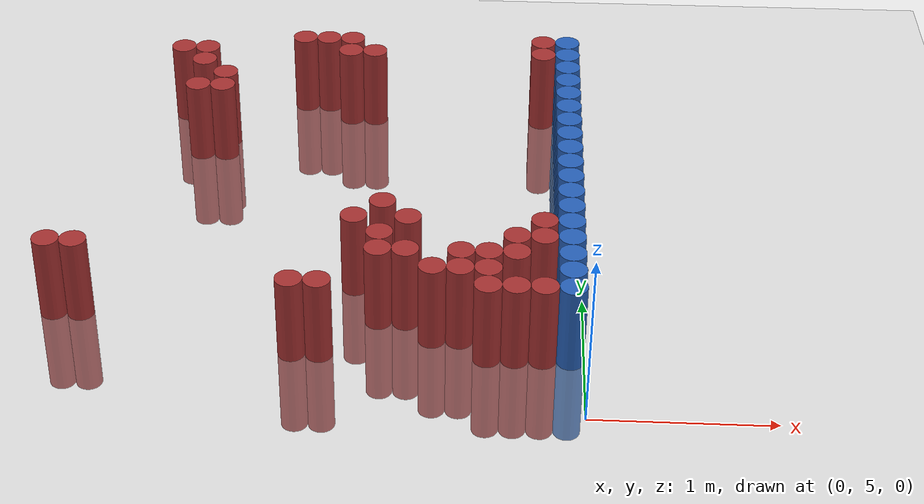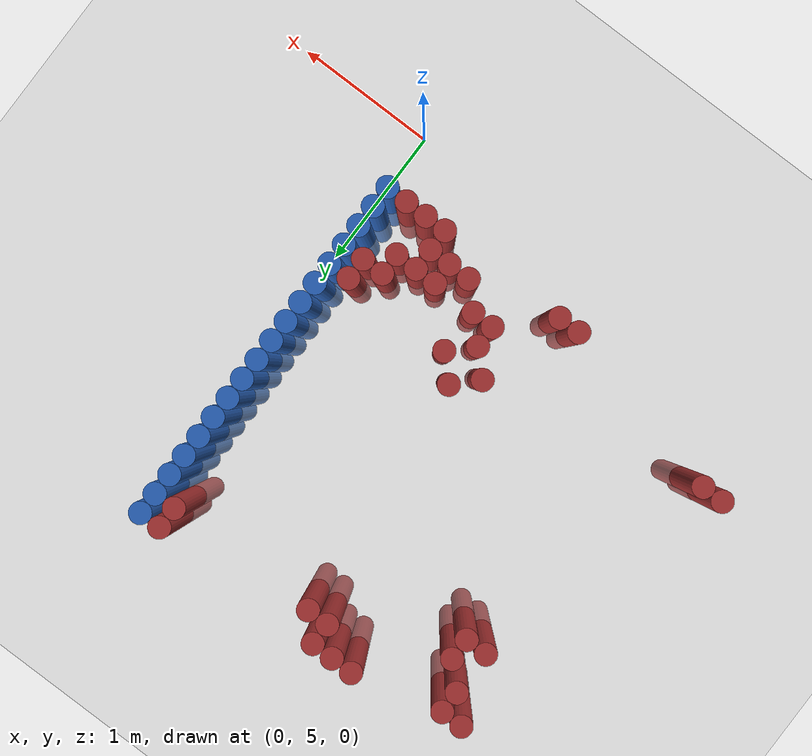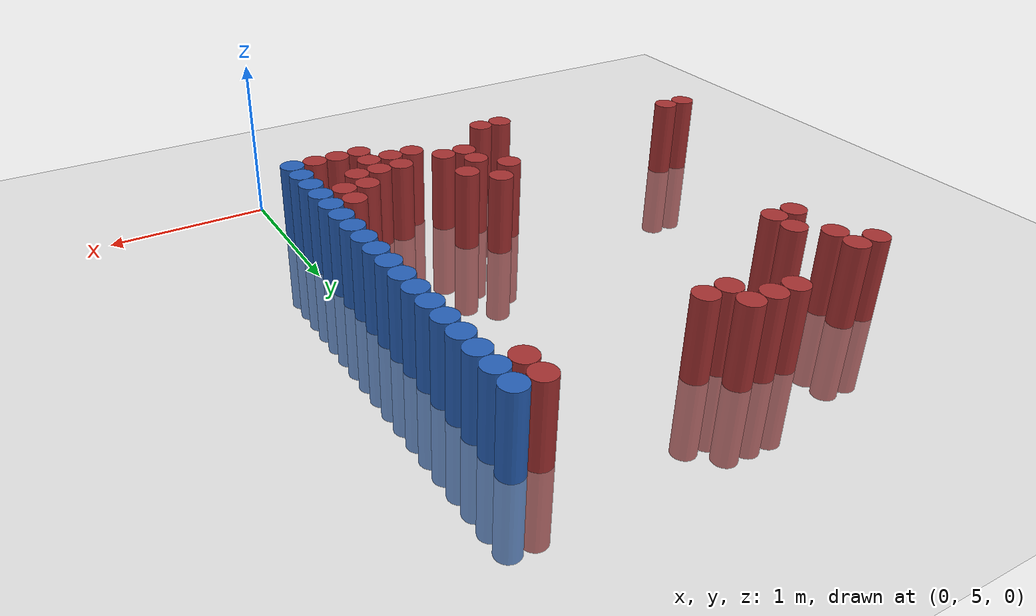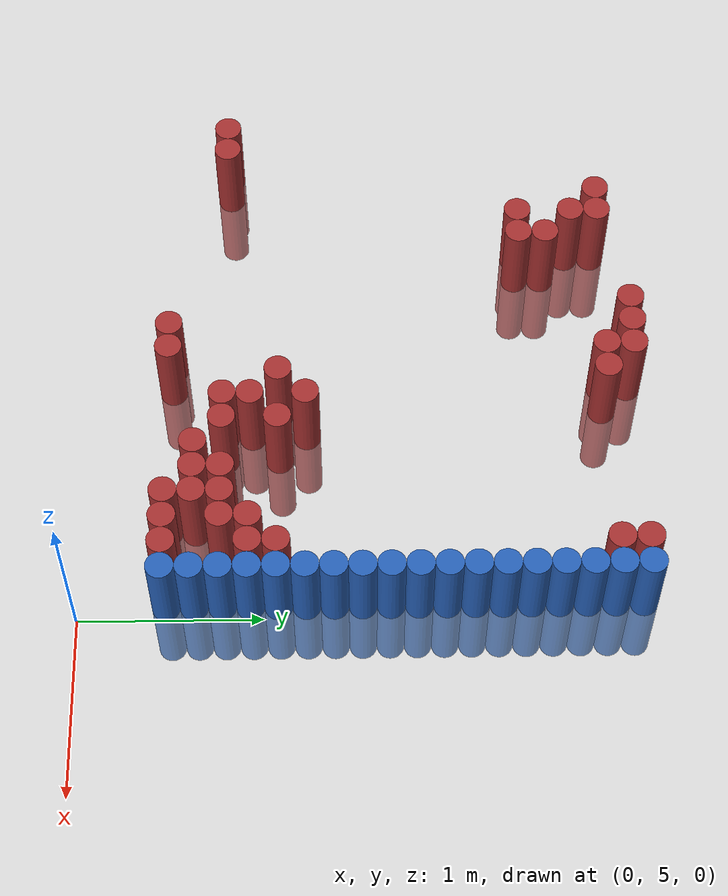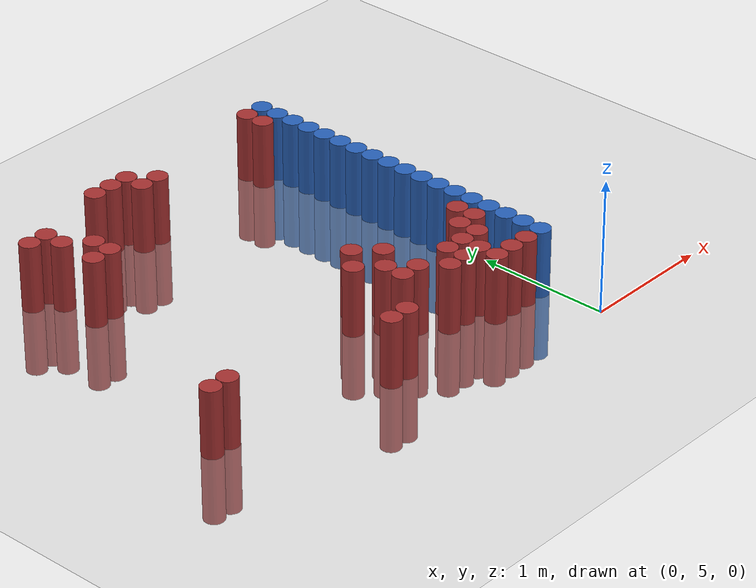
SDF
<sdf version="1.6">
 <world name="default">
  <model name="ground_plane">
   <static>1</static>
   <link name="link">
    <collision name="collision">
     <geometry><plane><normal>0 0 1</normal><size>100 100</size></plane></geometry>
     <surface><friction><ode><mu>100</mu><mu2>50</mu2></ode></friction></surface>
    </collision>
    <visual name="visual">
     <cast_shadows>0</cast_shadows>
     <geometry><plane><normal>0 0 1</normal><size>100 100</size></plane></geometry>
     <material>
      <script><uri>file://media/materials/scripts/gazebo.material</uri><name>Gazebo/Grey</name></script>
     </material>
    </visual>
   </link>
  </model>
  <model name="unit_cylinder_153">
   <static>1</static>
   <pose>-2.925000 5.775000 0.000000 0.000000 0.000000 0.000000</pose>
   <link name="link">
    <inertial>
     <mass>1</mass>
     <inertia><ixx>0.145833</ixx><ixy>0</ixy><ixz>0</ixz><iyy>0.145833</iyy><iyz>0</iyz><izz>0.125</izz></inertia>
    </inertial>
    <collision name="collision">
     <geometry><cylinder><radius>0.075000</radius><length>1</length></cylinder></geometry>
    </collision>
    <visual name="visual">
     <geometry><cylinder><radius>0.075000</radius><length>1</length></cylinder></geometry>
     <material>
      <ambient>0.648000 0.192000 0.192000 1</ambient>
      <diffuse>0.648000 0.192000 0.192000 1</diffuse>
     </material>
     <material>
      <script><name>Gazebo/Grey</name><uri>file://media/materials/scripts/gazebo.material</uri></script>
     </material>
    </visual>
   </link>
  </model>
  <model name="unit_cylinder_154">
   <static>1</static>
   <pose>-2.775000 5.775000 0.000000 0.000000 0.000000 0.000000</pose>
   <link name="link">
    <inertial>
     <mass>1</mass>
     <inertia><ixx>0.145833</ixx><ixy>0</ixy><ixz>0</ixz><iyy>0.145833</iyy><iyz>0</iyz><izz>0.125</izz></inertia>
    </inertial>
    <collision name="collision">
     <geometry><cylinder><radius>0.075000</radius><length>1</length></cylinder></geometry>
    </collision>
    <visual name="visual">
     <geometry><cylinder><radius>0.075000</radius><length>1</length></cylinder></geometry>
     <material>
      <ambient>0.648000 0.192000 0.192000 1</ambient>
      <diffuse>0.648000 0.192000 0.192000 1</diffuse>
     </material>
     <material>
      <script><name>Gazebo/Grey</name><uri>file://media/materials/scripts/gazebo.material</uri></script>
     </material>
    </visual>
   </link>
  </model>
  <model name="unit_cylinder_155">
   <static>1</static>
   <pose>-2.475000 7.875000 0.000000 0.000000 0.000000 0.000000</pose>
   <link name="link">
    <inertial>
     <mass>1</mass>
     <inertia><ixx>0.145833</ixx><ixy>0</ixy><ixz>0</ixz><iyy>0.145833</iyy><iyz>0</iyz><izz>0.125</izz></inertia>
    </inertial>
    <collision name="collision">
     <geometry><cylinder><radius>0.075000</radius><length>1</length></cylinder></geometry>
    </collision>
    <visual name="visual">
     <geometry><cylinder><radius>0.075000</radius><length>1</length></cylinder></geometry>
     <material>
      <ambient>0.648000 0.192000 0.192000 1</ambient>
      <diffuse>0.648000 0.192000 0.192000 1</diffuse>
     </material>
     <material>
      <script><name>Gazebo/Grey</name><uri>file://media/materials/scripts/gazebo.material</uri></script>
     </material>
    </visual>
   </link>
  </model>
  <model name="unit_cylinder_156">
   <static>1</static>
   <pose>-2.325000 7.425000 0.000000 0.000000 0.000000 0.000000</pose>
   <link name="link">
    <inertial>
     <mass>1</mass>
     <inertia><ixx>0.145833</ixx><ixy>0</ixy><ixz>0</ixz><iyy>0.145833</iyy><iyz>0</iyz><izz>0.125</izz></inertia>
    </inertial>
    <collision name="collision">
     <geometry><cylinder><radius>0.075000</radius><length>1</length></cylinder></geometry>
    </collision>
    <visual name="visual">
     <geometry><cylinder><radius>0.075000</radius><length>1</length></cylinder></geometry>
     <material>
      <ambient>0.648000 0.192000 0.192000 1</ambient>
      <diffuse>0.648000 0.192000 0.192000 1</diffuse>
     </material>
     <material>
      <script><name>Gazebo/Grey</name><uri>file://media/materials/scripts/gazebo.material</uri></script>
     </material>
    </visual>
   </link>
  </model>
  <model name="unit_cylinder_157">
   <static>1</static>
   <pose>-2.325000 7.725000 0.000000 0.000000 0.000000 0.000000</pose>
   <link name="link">
    <inertial>
     <mass>1</mass>
     <inertia><ixx>0.145833</ixx><ixy>0</ixy><ixz>0</ixz><iyy>0.145833</iyy><iyz>0</iyz><izz>0.125</izz></inertia>
    </inertial>
    <collision name="collision">
     <geometry><cylinder><radius>0.075000</radius><length>1</length></cylinder></geometry>
    </collision>
    <visual name="visual">
     <geometry><cylinder><radius>0.075000</radius><length>1</length></cylinder></geometry>
     <material>
      <ambient>0.648000 0.192000 0.192000 1</ambient>
      <diffuse>0.648000 0.192000 0.192000 1</diffuse>
     </material>
     <material>
      <script><name>Gazebo/Grey</name><uri>file://media/materials/scripts/gazebo.material</uri></script>
     </material>
    </visual>
   </link>
  </model>
  <model name="unit_cylinder_158">
   <static>1</static>
   <pose>-2.325000 7.875000 0.000000 0.000000 0.000000 0.000000</pose>
   <link name="link">
    <inertial>
     <mass>1</mass>
     <inertia><ixx>0.145833</ixx><ixy>0</ixy><ixz>0</ixz><iyy>0.145833</iyy><iyz>0</iyz><izz>0.125</izz></inertia>
    </inertial>
    <collision name="collision">
     <geometry><cylinder><radius>0.075000</radius><length>1</length></cylinder></geometry>
    </collision>
    <visual name="visual">
     <geometry><cylinder><radius>0.075000</radius><length>1</length></cylinder></geometry>
     <material>
      <ambient>0.648000 0.192000 0.192000 1</ambient>
      <diffuse>0.648000 0.192000 0.192000 1</diffuse>
     </material>
     <material>
      <script><name>Gazebo/Grey</name><uri>file://media/materials/scripts/gazebo.material</uri></script>
     </material>
    </visual>
   </link>
  </model>
  <model name="unit_cylinder_160">
   <static>1</static>
   <pose>-2.175000 7.425000 0.000000 0.000000 0.000000 0.000000</pose>
   <link name="link">
    <inertial>
     <mass>1</mass>
     <inertia><ixx>0.145833</ixx><ixy>0</ixy><ixz>0</ixz><iyy>0.145833</iyy><iyz>0</iyz><izz>0.125</izz></inertia>
    </inertial>
    <collision name="collision">
     <geometry><cylinder><radius>0.075000</radius><length>1</length></cylinder></geometry>
    </collision>
    <visual name="visual">
     <geometry><cylinder><radius>0.075000</radius><length>1</length></cylinder></geometry>
     <material>
      <ambient>0.648000 0.192000 0.192000 1</ambient>
      <diffuse>0.648000 0.192000 0.192000 1</diffuse>
     </material>
     <material>
      <script><name>Gazebo/Grey</name><uri>file://media/materials/scripts/gazebo.material</uri></script>
     </material>
    </visual>
   </link>
  </model>
  <model name="unit_cylinder_161">
   <static>1</static>
   <pose>-2.175000 7.575000 0.000000 0.000000 0.000000 0.000000</pose>
   <link name="link">
    <inertial>
     <mass>1</mass>
     <inertia><ixx>0.145833</ixx><ixy>0</ixy><ixz>0</ixz><iyy>0.145833</iyy><iyz>0</iyz><izz>0.125</izz></inertia>
    </inertial>
    <collision name="collision">
     <geometry><cylinder><radius>0.075000</radius><length>1</length></cylinder></geometry>
    </collision>
    <visual name="visual">
     <geometry><cylinder><radius>0.075000</radius><length>1</length></cylinder></geometry>
     <material>
      <ambient>0.648000 0.192000 0.192000 1</ambient>
      <diffuse>0.648000 0.192000 0.192000 1</diffuse>
     </material>
     <material>
      <script><name>Gazebo/Grey</name><uri>file://media/materials/scripts/gazebo.material</uri></script>
     </material>
    </visual>
   </link>
  </model>
  <model name="unit_cylinder_169">
   <static>1</static>
   <pose>-1.725000 8.025000 0.000000 0.000000 0.000000 0.000000</pose>
   <link name="link">
    <inertial>
     <mass>1</mass>
     <inertia><ixx>0.145833</ixx><ixy>0</ixy><ixz>0</ixz><iyy>0.145833</iyy><iyz>0</iyz><izz>0.125</izz></inertia>
    </inertial>
    <collision name="collision">
     <geometry><cylinder><radius>0.075000</radius><length>1</length></cylinder></geometry>
    </collision>
    <visual name="visual">
     <geometry><cylinder><radius>0.075000</radius><length>1</length></cylinder></geometry>
     <material>
      <ambient>0.648000 0.192000 0.192000 1</ambient>
      <diffuse>0.648000 0.192000 0.192000 1</diffuse>
     </material>
     <material>
      <script><name>Gazebo/Grey</name><uri>file://media/materials/scripts/gazebo.material</uri></script>
     </material>
    </visual>
   </link>
  </model>
  <model name="unit_cylinder_173">
   <static>1</static>
   <pose>-1.575000 5.475000 0.000000 0.000000 0.000000 0.000000</pose>
   <link name="link">
    <inertial>
     <mass>1</mass>
     <inertia><ixx>0.145833</ixx><ixy>0</ixy><ixz>0</ixz><iyy>0.145833</iyy><iyz>0</iyz><izz>0.125</izz></inertia>
    </inertial>
    <collision name="collision">
     <geometry><cylinder><radius>0.075000</radius><length>1</length></cylinder></geometry>
    </collision>
    <visual name="visual">
     <geometry><cylinder><radius>0.075000</radius><length>1</length></cylinder></geometry>
     <material>
      <ambient>0.648000 0.192000 0.192000 1</ambient>
      <diffuse>0.648000 0.192000 0.192000 1</diffuse>
     </material>
     <material>
      <script><name>Gazebo/Grey</name><uri>file://media/materials/scripts/gazebo.material</uri></script>
     </material>
    </visual>
   </link>
  </model>
  <model name="unit_cylinder_174">
   <static>1</static>
   <pose>-1.575000 8.025000 0.000000 0.000000 0.000000 0.000000</pose>
   <link name="link">
    <inertial>
     <mass>1</mass>
     <inertia><ixx>0.145833</ixx><ixy>0</ixy><ixz>0</ixz><iyy>0.145833</iyy><iyz>0</iyz><izz>0.125</izz></inertia>
    </inertial>
    <collision name="collision">
     <geometry><cylinder><radius>0.075000</radius><length>1</length></cylinder></geometry>
    </collision>
    <visual name="visual">
     <geometry><cylinder><radius>0.075000</radius><length>1</length></cylinder></geometry>
     <material>
      <ambient>0.648000 0.192000 0.192000 1</ambient>
      <diffuse>0.648000 0.192000 0.192000 1</diffuse>
     </material>
     <material>
      <script><name>Gazebo/Grey</name><uri>file://media/materials/scripts/gazebo.material</uri></script>
     </material>
    </visual>
   </link>
  </model>
  <model name="unit_cylinder_179">
   <static>1</static>
   <pose>-1.425000 5.475000 0.000000 0.000000 0.000000 0.000000</pose>
   <link name="link">
    <inertial>
     <mass>1</mass>
     <inertia><ixx>0.145833</ixx><ixy>0</ixy><ixz>0</ixz><iyy>0.145833</iyy><iyz>0</iyz><izz>0.125</izz></inertia>
    </inertial>
    <collision name="collision">
     <geometry><cylinder><radius>0.075000</radius><length>1</length></cylinder></geometry>
    </collision>
    <visual name="visual">
     <geometry><cylinder><radius>0.075000</radius><length>1</length></cylinder></geometry>
     <material>
      <ambient>0.648000 0.192000 0.192000 1</ambient>
      <diffuse>0.648000 0.192000 0.192000 1</diffuse>
     </material>
     <material>
      <script><name>Gazebo/Grey</name><uri>file://media/materials/scripts/gazebo.material</uri></script>
     </material>
    </visual>
   </link>
  </model>
  <model name="unit_cylinder_180">
   <static>1</static>
   <pose>-1.425000 7.875000 0.000000 0.000000 0.000000 0.000000</pose>
   <link name="link">
    <inertial>
     <mass>1</mass>
     <inertia><ixx>0.145833</ixx><ixy>0</ixy><ixz>0</ixz><iyy>0.145833</iyy><iyz>0</iyz><izz>0.125</izz></inertia>
    </inertial>
    <collision name="collision">
     <geometry><cylinder><radius>0.075000</radius><length>1</length></cylinder></geometry>
    </collision>
    <visual name="visual">
     <geometry><cylinder><radius>0.075000</radius><length>1</length></cylinder></geometry>
     <material>
      <ambient>0.648000 0.192000 0.192000 1</ambient>
      <diffuse>0.648000 0.192000 0.192000 1</diffuse>
     </material>
     <material>
      <script><name>Gazebo/Grey</name><uri>file://media/materials/scripts/gazebo.material</uri></script>
     </material>
    </visual>
   </link>
  </model>
  <model name="unit_cylinder_181">
   <static>1</static>
   <pose>-1.425000 8.025000 0.000000 0.000000 0.000000 0.000000</pose>
   <link name="link">
    <inertial>
     <mass>1</mass>
     <inertia><ixx>0.145833</ixx><ixy>0</ixy><ixz>0</ixz><iyy>0.145833</iyy><iyz>0</iyz><izz>0.125</izz></inertia>
    </inertial>
    <collision name="collision">
     <geometry><cylinder><radius>0.075000</radius><length>1</length></cylinder></geometry>
    </collision>
    <visual name="visual">
     <geometry><cylinder><radius>0.075000</radius><length>1</length></cylinder></geometry>
     <material>
      <ambient>0.648000 0.192000 0.192000 1</ambient>
      <diffuse>0.648000 0.192000 0.192000 1</diffuse>
     </material>
     <material>
      <script><name>Gazebo/Grey</name><uri>file://media/materials/scripts/gazebo.material</uri></script>
     </material>
    </visual>
   </link>
  </model>
  <model name="unit_cylinder_185">
   <static>1</static>
   <pose>-1.275000 6.075000 0.000000 0.000000 0.000000 0.000000</pose>
   <link name="link">
    <inertial>
     <mass>1</mass>
     <inertia><ixx>0.145833</ixx><ixy>0</ixy><ixz>0</ixz><iyy>0.145833</iyy><iyz>0</iyz><izz>0.125</izz></inertia>
    </inertial>
    <collision name="collision">
     <geometry><cylinder><radius>0.075000</radius><length>1</length></cylinder></geometry>
    </collision>
    <visual name="visual">
     <geometry><cylinder><radius>0.075000</radius><length>1</length></cylinder></geometry>
     <material>
      <ambient>0.648000 0.192000 0.192000 1</ambient>
      <diffuse>0.648000 0.192000 0.192000 1</diffuse>
     </material>
     <material>
      <script><name>Gazebo/Grey</name><uri>file://media/materials/scripts/gazebo.material</uri></script>
     </material>
    </visual>
   </link>
  </model>
  <model name="unit_cylinder_186">
   <static>1</static>
   <pose>-1.275000 7.875000 0.000000 0.000000 0.000000 0.000000</pose>
   <link name="link">
    <inertial>
     <mass>1</mass>
     <inertia><ixx>0.145833</ixx><ixy>0</ixy><ixz>0</ixz><iyy>0.145833</iyy><iyz>0</iyz><izz>0.125</izz></inertia>
    </inertial>
    <collision name="collision">
     <geometry><cylinder><radius>0.075000</radius><length>1</length></cylinder></geometry>
    </collision>
    <visual name="visual">
     <geometry><cylinder><radius>0.075000</radius><length>1</length></cylinder></geometry>
     <material>
      <ambient>0.648000 0.192000 0.192000 1</ambient>
      <diffuse>0.648000 0.192000 0.192000 1</diffuse>
     </material>
     <material>
      <script><name>Gazebo/Grey</name><uri>file://media/materials/scripts/gazebo.material</uri></script>
     </material>
    </visual>
   </link>
  </model>
  <model name="unit_cylinder_188">
   <static>1</static>
   <pose>-1.125000 5.775000 0.000000 0.000000 0.000000 0.000000</pose>
   <link name="link">
    <inertial>
     <mass>1</mass>
     <inertia><ixx>0.145833</ixx><ixy>0</ixy><ixz>0</ixz><iyy>0.145833</iyy><iyz>0</iyz><izz>0.125</izz></inertia>
    </inertial>
    <collision name="collision">
     <geometry><cylinder><radius>0.075000</radius><length>1</length></cylinder></geometry>
    </collision>
    <visual name="visual">
     <geometry><cylinder><radius>0.075000</radius><length>1</length></cylinder></geometry>
     <material>
      <ambient>0.648000 0.192000 0.192000 1</ambient>
      <diffuse>0.648000 0.192000 0.192000 1</diffuse>
     </material>
     <material>
      <script><name>Gazebo/Grey</name><uri>file://media/materials/scripts/gazebo.material</uri></script>
     </material>
    </visual>
   </link>
  </model>
  <model name="unit_cylinder_189">
   <static>1</static>
   <pose>-1.125000 5.925000 0.000000 0.000000 0.000000 0.000000</pose>
   <link name="link">
    <inertial>
     <mass>1</mass>
     <inertia><ixx>0.145833</ixx><ixy>0</ixy><ixz>0</ixz><iyy>0.145833</iyy><iyz>0</iyz><izz>0.125</izz></inertia>
    </inertial>
    <collision name="collision">
     <geometry><cylinder><radius>0.075000</radius><length>1</length></cylinder></geometry>
    </collision>
    <visual name="visual">
     <geometry><cylinder><radius>0.075000</radius><length>1</length></cylinder></geometry>
     <material>
      <ambient>0.648000 0.192000 0.192000 1</ambient>
      <diffuse>0.648000 0.192000 0.192000 1</diffuse>
     </material>
     <material>
      <script><name>Gazebo/Grey</name><uri>file://media/materials/scripts/gazebo.material</uri></script>
     </material>
    </visual>
   </link>
  </model>
  <model name="unit_cylinder_190">
   <static>1</static>
   <pose>-1.125000 6.225000 0.000000 0.000000 0.000000 0.000000</pose>
   <link name="link">
    <inertial>
     <mass>1</mass>
     <inertia><ixx>0.145833</ixx><ixy>0</ixy><ixz>0</ixz><iyy>0.145833</iyy><iyz>0</iyz><izz>0.125</izz></inertia>
    </inertial>
    <collision name="collision">
     <geometry><cylinder><radius>0.075000</radius><length>1</length></cylinder></geometry>
    </collision>
    <visual name="visual">
     <geometry><cylinder><radius>0.075000</radius><length>1</length></cylinder></geometry>
     <material>
      <ambient>0.648000 0.192000 0.192000 1</ambient>
      <diffuse>0.648000 0.192000 0.192000 1</diffuse>
     </material>
     <material>
      <script><name>Gazebo/Grey</name><uri>file://media/materials/scripts/gazebo.material</uri></script>
     </material>
    </visual>
   </link>
  </model>
  <model name="unit_cylinder_192">
   <static>1</static>
   <pose>-0.975000 5.775000 0.000000 0.000000 0.000000 0.000000</pose>
   <link name="link">
    <inertial>
     <mass>1</mass>
     <inertia><ixx>0.145833</ixx><ixy>0</ixy><ixz>0</ixz><iyy>0.145833</iyy><iyz>0</iyz><izz>0.125</izz></inertia>
    </inertial>
    <collision name="collision">
     <geometry><cylinder><radius>0.075000</radius><length>1</length></cylinder></geometry>
    </collision>
    <visual name="visual">
     <geometry><cylinder><radius>0.075000</radius><length>1</length></cylinder></geometry>
     <material>
      <ambient>0.648000 0.192000 0.192000 1</ambient>
      <diffuse>0.648000 0.192000 0.192000 1</diffuse>
     </material>
     <material>
      <script><name>Gazebo/Grey</name><uri>file://media/materials/scripts/gazebo.material</uri></script>
     </material>
    </visual>
   </link>
  </model>
  <model name="unit_cylinder_193">
   <static>1</static>
   <pose>-0.975000 6.075000 0.000000 0.000000 0.000000 0.000000</pose>
   <link name="link">
    <inertial>
     <mass>1</mass>
     <inertia><ixx>0.145833</ixx><ixy>0</ixy><ixz>0</ixz><iyy>0.145833</iyy><iyz>0</iyz><izz>0.125</izz></inertia>
    </inertial>
    <collision name="collision">
     <geometry><cylinder><radius>0.075000</radius><length>1</length></cylinder></geometry>
    </collision>
    <visual name="visual">
     <geometry><cylinder><radius>0.075000</radius><length>1</length></cylinder></geometry>
     <material>
      <ambient>0.648000 0.192000 0.192000 1</ambient>
      <diffuse>0.648000 0.192000 0.192000 1</diffuse>
     </material>
     <material>
      <script><name>Gazebo/Grey</name><uri>file://media/materials/scripts/gazebo.material</uri></script>
     </material>
    </visual>
   </link>
  </model>
  <model name="unit_cylinder_196">
   <static>1</static>
   <pose>-0.825000 5.625000 0.000000 0.000000 0.000000 0.000000</pose>
   <link name="link">
    <inertial>
     <mass>1</mass>
     <inertia><ixx>0.145833</ixx><ixy>0</ixy><ixz>0</ixz><iyy>0.145833</iyy><iyz>0</iyz><izz>0.125</izz></inertia>
    </inertial>
    <collision name="collision">
     <geometry><cylinder><radius>0.075000</radius><length>1</length></cylinder></geometry>
    </collision>
    <visual name="visual">
     <geometry><cylinder><radius>0.075000</radius><length>1</length></cylinder></geometry>
     <material>
      <ambient>0.648000 0.192000 0.192000 1</ambient>
      <diffuse>0.648000 0.192000 0.192000 1</diffuse>
     </material>
     <material>
      <script><name>Gazebo/Grey</name><uri>file://media/materials/scripts/gazebo.material</uri></script>
     </material>
    </visual>
   </link>
  </model>
  <model name="unit_cylinder_200">
   <static>1</static>
   <pose>-0.675000 5.625000 0.000000 0.000000 0.000000 0.000000</pose>
   <link name="link">
    <inertial>
     <mass>1</mass>
     <inertia><ixx>0.145833</ixx><ixy>0</ixy><ixz>0</ixz><iyy>0.145833</iyy><iyz>0</iyz><izz>0.125</izz></inertia>
    </inertial>
    <collision name="collision">
     <geometry><cylinder><radius>0.075000</radius><length>1</length></cylinder></geometry>
    </collision>
    <visual name="visual">
     <geometry><cylinder><radius>0.075000</radius><length>1</length></cylinder></geometry>
     <material>
      <ambient>0.648000 0.192000 0.192000 1</ambient>
      <diffuse>0.648000 0.192000 0.192000 1</diffuse>
     </material>
     <material>
      <script><name>Gazebo/Grey</name><uri>file://media/materials/scripts/gazebo.material</uri></script>
     </material>
    </visual>
   </link>
  </model>
  <model name="unit_cylinder_201">
   <static>1</static>
   <pose>-0.675000 5.775000 0.000000 0.000000 0.000000 0.000000</pose>
   <link name="link">
    <inertial>
     <mass>1</mass>
     <inertia><ixx>0.145833</ixx><ixy>0</ixy><ixz>0</ixz><iyy>0.145833</iyy><iyz>0</iyz><izz>0.125</izz></inertia>
    </inertial>
    <collision name="collision">
     <geometry><cylinder><radius>0.075000</radius><length>1</length></cylinder></geometry>
    </collision>
    <visual name="visual">
     <geometry><cylinder><radius>0.075000</radius><length>1</length></cylinder></geometry>
     <material>
      <ambient>0.648000 0.192000 0.192000 1</ambient>
      <diffuse>0.648000 0.192000 0.192000 1</diffuse>
     </material>
     <material>
      <script><name>Gazebo/Grey</name><uri>file://media/materials/scripts/gazebo.material</uri></script>
     </material>
    </visual>
   </link>
  </model>
  <model name="unit_cylinder_207">
   <static>1</static>
   <pose>-0.525000 5.475000 0.000000 0.000000 0.000000 0.000000</pose>
   <link name="link">
    <inertial>
     <mass>1</mass>
     <inertia><ixx>0.145833</ixx><ixy>0</ixy><ixz>0</ixz><iyy>0.145833</iyy><iyz>0</iyz><izz>0.125</izz></inertia>
    </inertial>
    <collision name="collision">
     <geometry><cylinder><radius>0.075000</radius><length>1</length></cylinder></geometry>
    </collision>
    <visual name="visual">
     <geometry><cylinder><radius>0.075000</radius><length>1</length></cylinder></geometry>
     <material>
      <ambient>0.648000 0.192000 0.192000 1</ambient>
      <diffuse>0.648000 0.192000 0.192000 1</diffuse>
     </material>
     <material>
      <script><name>Gazebo/Grey</name><uri>file://media/materials/scripts/gazebo.material</uri></script>
     </material>
    </visual>
   </link>
  </model>
  <model name="unit_cylinder_208">
   <static>1</static>
   <pose>-0.525000 5.625000 0.000000 0.000000 0.000000 0.000000</pose>
   <link name="link">
    <inertial>
     <mass>1</mass>
     <inertia><ixx>0.145833</ixx><ixy>0</ixy><ixz>0</ixz><iyy>0.145833</iyy><iyz>0</iyz><izz>0.125</izz></inertia>
    </inertial>
    <collision name="collision">
     <geometry><cylinder><radius>0.075000</radius><length>1</length></cylinder></geometry>
    </collision>
    <visual name="visual">
     <geometry><cylinder><radius>0.075000</radius><length>1</length></cylinder></geometry>
     <material>
      <ambient>0.648000 0.192000 0.192000 1</ambient>
      <diffuse>0.648000 0.192000 0.192000 1</diffuse>
     </material>
     <material>
      <script><name>Gazebo/Grey</name><uri>file://media/materials/scripts/gazebo.material</uri></script>
     </material>
    </visual>
   </link>
  </model>
  <model name="unit_cylinder_209">
   <static>1</static>
   <pose>-0.525000 5.775000 0.000000 0.000000 0.000000 0.000000</pose>
   <link name="link">
    <inertial>
     <mass>1</mass>
     <inertia><ixx>0.145833</ixx><ixy>0</ixy><ixz>0</ixz><iyy>0.145833</iyy><iyz>0</iyz><izz>0.125</izz></inertia>
    </inertial>
    <collision name="collision">
     <geometry><cylinder><radius>0.075000</radius><length>1</length></cylinder></geometry>
    </collision>
    <visual name="visual">
     <geometry><cylinder><radius>0.075000</radius><length>1</length></cylinder></geometry>
     <material>
      <ambient>0.648000 0.192000 0.192000 1</ambient>
      <diffuse>0.648000 0.192000 0.192000 1</diffuse>
     </material>
     <material>
      <script><name>Gazebo/Grey</name><uri>file://media/materials/scripts/gazebo.material</uri></script>
     </material>
    </visual>
   </link>
  </model>
  <model name="unit_cylinder_215">
   <static>1</static>
   <pose>-0.375000 5.475000 0.000000 0.000000 0.000000 0.000000</pose>
   <link name="link">
    <inertial>
     <mass>1</mass>
     <inertia><ixx>0.145833</ixx><ixy>0</ixy><ixz>0</ixz><iyy>0.145833</iyy><iyz>0</iyz><izz>0.125</izz></inertia>
    </inertial>
    <collision name="collision">
     <geometry><cylinder><radius>0.075000</radius><length>1</length></cylinder></geometry>
    </collision>
    <visual name="visual">
     <geometry><cylinder><radius>0.075000</radius><length>1</length></cylinder></geometry>
     <material>
      <ambient>0.648000 0.192000 0.192000 1</ambient>
      <diffuse>0.648000 0.192000 0.192000 1</diffuse>
     </material>
     <material>
      <script><name>Gazebo/Grey</name><uri>file://media/materials/scripts/gazebo.material</uri></script>
     </material>
    </visual>
   </link>
  </model>
  <model name="unit_cylinder_216">
   <static>1</static>
   <pose>-0.375000 5.775000 0.000000 0.000000 0.000000 0.000000</pose>
   <link name="link">
    <inertial>
     <mass>1</mass>
     <inertia><ixx>0.145833</ixx><ixy>0</ixy><ixz>0</ixz><iyy>0.145833</iyy><iyz>0</iyz><izz>0.125</izz></inertia>
    </inertial>
    <collision name="collision">
     <geometry><cylinder><radius>0.075000</radius><length>1</length></cylinder></geometry>
    </collision>
    <visual name="visual">
     <geometry><cylinder><radius>0.075000</radius><length>1</length></cylinder></geometry>
     <material>
      <ambient>0.648000 0.192000 0.192000 1</ambient>
      <diffuse>0.648000 0.192000 0.192000 1</diffuse>
     </material>
     <material>
      <script><name>Gazebo/Grey</name><uri>file://media/materials/scripts/gazebo.material</uri></script>
     </material>
    </visual>
   </link>
  </model>
  <model name="unit_cylinder_217">
   <static>1</static>
   <pose>-0.375000 5.925000 0.000000 0.000000 0.000000 0.000000</pose>
   <link name="link">
    <inertial>
     <mass>1</mass>
     <inertia><ixx>0.145833</ixx><ixy>0</ixy><ixz>0</ixz><iyy>0.145833</iyy><iyz>0</iyz><izz>0.125</izz></inertia>
    </inertial>
    <collision name="collision">
     <geometry><cylinder><radius>0.075000</radius><length>1</length></cylinder></geometry>
    </collision>
    <visual name="visual">
     <geometry><cylinder><radius>0.075000</radius><length>1</length></cylinder></geometry>
     <material>
      <ambient>0.648000 0.192000 0.192000 1</ambient>
      <diffuse>0.648000 0.192000 0.192000 1</diffuse>
     </material>
     <material>
      <script><name>Gazebo/Grey</name><uri>file://media/materials/scripts/gazebo.material</uri></script>
     </material>
    </visual>
   </link>
  </model>
  <model name="unit_cylinder_222">
   <static>1</static>
   <pose>-0.225000 5.475000 0.000000 0.000000 0.000000 0.000000</pose>
   <link name="link">
    <inertial>
     <mass>1</mass>
     <inertia><ixx>0.145833</ixx><ixy>0</ixy><ixz>0</ixz><iyy>0.145833</iyy><iyz>0</iyz><izz>0.125</izz></inertia>
    </inertial>
    <collision name="collision">
     <geometry><cylinder><radius>0.075000</radius><length>1</length></cylinder></geometry>
    </collision>
    <visual name="visual">
     <geometry><cylinder><radius>0.075000</radius><length>1</length></cylinder></geometry>
     <material>
      <ambient>0.648000 0.192000 0.192000 1</ambient>
      <diffuse>0.648000 0.192000 0.192000 1</diffuse>
     </material>
     <material>
      <script><name>Gazebo/Grey</name><uri>file://media/materials/scripts/gazebo.material</uri></script>
     </material>
    </visual>
   </link>
  </model>
  <model name="unit_cylinder_223">
   <static>1</static>
   <pose>-0.225000 5.925000 0.000000 0.000000 0.000000 0.000000</pose>
   <link name="link">
    <inertial>
     <mass>1</mass>
     <inertia><ixx>0.145833</ixx><ixy>0</ixy><ixz>0</ixz><iyy>0.145833</iyy><iyz>0</iyz><izz>0.125</izz></inertia>
    </inertial>
    <collision name="collision">
     <geometry><cylinder><radius>0.075000</radius><length>1</length></cylinder></geometry>
    </collision>
    <visual name="visual">
     <geometry><cylinder><radius>0.075000</radius><length>1</length></cylinder></geometry>
     <material>
      <ambient>0.648000 0.192000 0.192000 1</ambient>
      <diffuse>0.648000 0.192000 0.192000 1</diffuse>
     </material>
     <material>
      <script><name>Gazebo/Grey</name><uri>file://media/materials/scripts/gazebo.material</uri></script>
     </material>
    </visual>
   </link>
  </model>
  <model name="unit_cylinder_224">
   <static>1</static>
   <pose>-0.225000 6.075000 0.000000 0.000000 0.000000 0.000000</pose>
   <link name="link">
    <inertial>
     <mass>1</mass>
     <inertia><ixx>0.145833</ixx><ixy>0</ixy><ixz>0</ixz><iyy>0.145833</iyy><iyz>0</iyz><izz>0.125</izz></inertia>
    </inertial>
    <collision name="collision">
     <geometry><cylinder><radius>0.075000</radius><length>1</length></cylinder></geometry>
    </collision>
    <visual name="visual">
     <geometry><cylinder><radius>0.075000</radius><length>1</length></cylinder></geometry>
     <material>
      <ambient>0.648000 0.192000 0.192000 1</ambient>
      <diffuse>0.648000 0.192000 0.192000 1</diffuse>
     </material>
     <material>
      <script><name>Gazebo/Grey</name><uri>file://media/materials/scripts/gazebo.material</uri></script>
     </material>
    </visual>
   </link>
  </model>
  <model name="unit_cylinder_225">
   <static>1</static>
   <pose>-0.225000 7.875000 0.000000 0.000000 0.000000 0.000000</pose>
   <link name="link">
    <inertial>
     <mass>1</mass>
     <inertia><ixx>0.145833</ixx><ixy>0</ixy><ixz>0</ixz><iyy>0.145833</iyy><iyz>0</iyz><izz>0.125</izz></inertia>
    </inertial>
    <collision name="collision">
     <geometry><cylinder><radius>0.075000</radius><length>1</length></cylinder></geometry>
    </collision>
    <visual name="visual">
     <geometry><cylinder><radius>0.075000</radius><length>1</length></cylinder></geometry>
     <material>
      <ambient>0.648000 0.192000 0.192000 1</ambient>
      <diffuse>0.648000 0.192000 0.192000 1</diffuse>
     </material>
     <material>
      <script><name>Gazebo/Grey</name><uri>file://media/materials/scripts/gazebo.material</uri></script>
     </material>
    </visual>
   </link>
  </model>
  <model name="unit_cylinder_226">
   <static>1</static>
   <pose>-0.225000 8.025000 0.000000 0.000000 0.000000 0.000000</pose>
   <link name="link">
    <inertial>
     <mass>1</mass>
     <inertia><ixx>0.145833</ixx><ixy>0</ixy><ixz>0</ixz><iyy>0.145833</iyy><iyz>0</iyz><izz>0.125</izz></inertia>
    </inertial>
    <collision name="collision">
     <geometry><cylinder><radius>0.075000</radius><length>1</length></cylinder></geometry>
    </collision>
    <visual name="visual">
     <geometry><cylinder><radius>0.075000</radius><length>1</length></cylinder></geometry>
     <material>
      <ambient>0.648000 0.192000 0.192000 1</ambient>
      <diffuse>0.648000 0.192000 0.192000 1</diffuse>
     </material>
     <material>
      <script><name>Gazebo/Grey</name><uri>file://media/materials/scripts/gazebo.material</uri></script>
     </material>
    </visual>
   </link>
  </model>
  <model name="unit_cylinder_236">
   <static>1</static>
   <pose>-0.075000 5.475000 0.000000 0.000000 0.000000 0.000000</pose>
   <link name="link">
    <inertial>
     <mass>1</mass>
     <inertia><ixx>0.145833</ixx><ixy>0</ixy><ixz>0</ixz><iyy>0.145833</iyy><iyz>0</iyz><izz>0.125</izz></inertia>
    </inertial>
    <collision name="collision">
     <geometry><cylinder><radius>0.075000</radius><length>1</length></cylinder></geometry>
    </collision>
    <visual name="visual">
     <geometry><cylinder><radius>0.075000</radius><length>1</length></cylinder></geometry>
     <material>
      <ambient>0.152000 0.379000 0.720000 1</ambient>
      <diffuse>0.152000 0.379000 0.720000 1</diffuse>
     </material>
     <material>
      <script><name>Gazebo/Grey</name><uri>file://media/materials/scripts/gazebo.material</uri></script>
     </material>
    </visual>
   </link>
  </model>
  <model name="unit_cylinder_237">
   <static>1</static>
   <pose>-0.075000 5.625000 0.000000 0.000000 0.000000 0.000000</pose>
   <link name="link">
    <inertial>
     <mass>1</mass>
     <inertia><ixx>0.145833</ixx><ixy>0</ixy><ixz>0</ixz><iyy>0.145833</iyy><iyz>0</iyz><izz>0.125</izz></inertia>
    </inertial>
    <collision name="collision">
     <geometry><cylinder><radius>0.075000</radius><length>1</length></cylinder></geometry>
    </collision>
    <visual name="visual">
     <geometry><cylinder><radius>0.075000</radius><length>1</length></cylinder></geometry>
     <material>
      <ambient>0.152000 0.379000 0.720000 1</ambient>
      <diffuse>0.152000 0.379000 0.720000 1</diffuse>
     </material>
     <material>
      <script><name>Gazebo/Grey</name><uri>file://media/materials/scripts/gazebo.material</uri></script>
     </material>
    </visual>
   </link>
  </model>
  <model name="unit_cylinder_238">
   <static>1</static>
   <pose>-0.075000 5.775000 0.000000 0.000000 0.000000 0.000000</pose>
   <link name="link">
    <inertial>
     <mass>1</mass>
     <inertia><ixx>0.145833</ixx><ixy>0</ixy><ixz>0</ixz><iyy>0.145833</iyy><iyz>0</iyz><izz>0.125</izz></inertia>
    </inertial>
    <collision name="collision">
     <geometry><cylinder><radius>0.075000</radius><length>1</length></cylinder></geometry>
    </collision>
    <visual name="visual">
     <geometry><cylinder><radius>0.075000</radius><length>1</length></cylinder></geometry>
     <material>
      <ambient>0.152000 0.379000 0.720000 1</ambient>
      <diffuse>0.152000 0.379000 0.720000 1</diffuse>
     </material>
     <material>
      <script><name>Gazebo/Grey</name><uri>file://media/materials/scripts/gazebo.material</uri></script>
     </material>
    </visual>
   </link>
  </model>
  <model name="unit_cylinder_239">
   <static>1</static>
   <pose>-0.075000 5.925000 0.000000 0.000000 0.000000 0.000000</pose>
   <link name="link">
    <inertial>
     <mass>1</mass>
     <inertia><ixx>0.145833</ixx><ixy>0</ixy><ixz>0</ixz><iyy>0.145833</iyy><iyz>0</iyz><izz>0.125</izz></inertia>
    </inertial>
    <collision name="collision">
     <geometry><cylinder><radius>0.075000</radius><length>1</length></cylinder></geometry>
    </collision>
    <visual name="visual">
     <geometry><cylinder><radius>0.075000</radius><length>1</length></cylinder></geometry>
     <material>
      <ambient>0.152000 0.379000 0.720000 1</ambient>
      <diffuse>0.152000 0.379000 0.720000 1</diffuse>
     </material>
     <material>
      <script><name>Gazebo/Grey</name><uri>file://media/materials/scripts/gazebo.material</uri></script>
     </material>
    </visual>
   </link>
  </model>
  <model name="unit_cylinder_240">
   <static>1</static>
   <pose>-0.075000 6.075000 0.000000 0.000000 0.000000 0.000000</pose>
   <link name="link">
    <inertial>
     <mass>1</mass>
     <inertia><ixx>0.145833</ixx><ixy>0</ixy><ixz>0</ixz><iyy>0.145833</iyy><iyz>0</iyz><izz>0.125</izz></inertia>
    </inertial>
    <collision name="collision">
     <geometry><cylinder><radius>0.075000</radius><length>1</length></cylinder></geometry>
    </collision>
    <visual name="visual">
     <geometry><cylinder><radius>0.075000</radius><length>1</length></cylinder></geometry>
     <material>
      <ambient>0.152000 0.379000 0.720000 1</ambient>
      <diffuse>0.152000 0.379000 0.720000 1</diffuse>
     </material>
     <material>
      <script><name>Gazebo/Grey</name><uri>file://media/materials/scripts/gazebo.material</uri></script>
     </material>
    </visual>
   </link>
  </model>
  <model name="unit_cylinder_241">
   <static>1</static>
   <pose>-0.075000 6.225000 0.000000 0.000000 0.000000 0.000000</pose>
   <link name="link">
    <inertial>
     <mass>1</mass>
     <inertia><ixx>0.145833</ixx><ixy>0</ixy><ixz>0</ixz><iyy>0.145833</iyy><iyz>0</iyz><izz>0.125</izz></inertia>
    </inertial>
    <collision name="collision">
     <geometry><cylinder><radius>0.075000</radius><length>1</length></cylinder></geometry>
    </collision>
    <visual name="visual">
     <geometry><cylinder><radius>0.075000</radius><length>1</length></cylinder></geometry>
     <material>
      <ambient>0.152000 0.379000 0.720000 1</ambient>
      <diffuse>0.152000 0.379000 0.720000 1</diffuse>
     </material>
     <material>
      <script><name>Gazebo/Grey</name><uri>file://media/materials/scripts/gazebo.material</uri></script>
     </material>
    </visual>
   </link>
  </model>
  <model name="unit_cylinder_242">
   <static>1</static>
   <pose>-0.075000 6.375000 0.000000 0.000000 0.000000 0.000000</pose>
   <link name="link">
    <inertial>
     <mass>1</mass>
     <inertia><ixx>0.145833</ixx><ixy>0</ixy><ixz>0</ixz><iyy>0.145833</iyy><iyz>0</iyz><izz>0.125</izz></inertia>
    </inertial>
    <collision name="collision">
     <geometry><cylinder><radius>0.075000</radius><length>1</length></cylinder></geometry>
    </collision>
    <visual name="visual">
     <geometry><cylinder><radius>0.075000</radius><length>1</length></cylinder></geometry>
     <material>
      <ambient>0.152000 0.379000 0.720000 1</ambient>
      <diffuse>0.152000 0.379000 0.720000 1</diffuse>
     </material>
     <material>
      <script><name>Gazebo/Grey</name><uri>file://media/materials/scripts/gazebo.material</uri></script>
     </material>
    </visual>
   </link>
  </model>
  <model name="unit_cylinder_243">
   <static>1</static>
   <pose>-0.075000 6.525000 0.000000 0.000000 0.000000 0.000000</pose>
   <link name="link">
    <inertial>
     <mass>1</mass>
     <inertia><ixx>0.145833</ixx><ixy>0</ixy><ixz>0</ixz><iyy>0.145833</iyy><iyz>0</iyz><izz>0.125</izz></inertia>
    </inertial>
    <collision name="collision">
     <geometry><cylinder><radius>0.075000</radius><length>1</length></cylinder></geometry>
    </collision>
    <visual name="visual">
     <geometry><cylinder><radius>0.075000</radius><length>1</length></cylinder></geometry>
     <material>
      <ambient>0.152000 0.379000 0.720000 1</ambient>
      <diffuse>0.152000 0.379000 0.720000 1</diffuse>
     </material>
     <material>
      <script><name>Gazebo/Grey</name><uri>file://media/materials/scripts/gazebo.material</uri></script>
     </material>
    </visual>
   </link>
  </model>
  <model name="unit_cylinder_244">
   <static>1</static>
   <pose>-0.075000 6.675000 0.000000 0.000000 0.000000 0.000000</pose>
   <link name="link">
    <inertial>
     <mass>1</mass>
     <inertia><ixx>0.145833</ixx><ixy>0</ixy><ixz>0</ixz><iyy>0.145833</iyy><iyz>0</iyz><izz>0.125</izz></inertia>
    </inertial>
    <collision name="collision">
     <geometry><cylinder><radius>0.075000</radius><length>1</length></cylinder></geometry>
    </collision>
    <visual name="visual">
     <geometry><cylinder><radius>0.075000</radius><length>1</length></cylinder></geometry>
     <material>
      <ambient>0.152000 0.379000 0.720000 1</ambient>
      <diffuse>0.152000 0.379000 0.720000 1</diffuse>
     </material>
     <material>
      <script><name>Gazebo/Grey</name><uri>file://media/materials/scripts/gazebo.material</uri></script>
     </material>
    </visual>
   </link>
  </model>
  <model name="unit_cylinder_245">
   <static>1</static>
   <pose>-0.075000 6.825000 0.000000 0.000000 0.000000 0.000000</pose>
   <link name="link">
    <inertial>
     <mass>1</mass>
     <inertia><ixx>0.145833</ixx><ixy>0</ixy><ixz>0</ixz><iyy>0.145833</iyy><iyz>0</iyz><izz>0.125</izz></inertia>
    </inertial>
    <collision name="collision">
     <geometry><cylinder><radius>0.075000</radius><length>1</length></cylinder></geometry>
    </collision>
    <visual name="visual">
     <geometry><cylinder><radius>0.075000</radius><length>1</length></cylinder></geometry>
     <material>
      <ambient>0.152000 0.379000 0.720000 1</ambient>
      <diffuse>0.152000 0.379000 0.720000 1</diffuse>
     </material>
     <material>
      <script><name>Gazebo/Grey</name><uri>file://media/materials/scripts/gazebo.material</uri></script>
     </material>
    </visual>
   </link>
  </model>
  <model name="unit_cylinder_246">
   <static>1</static>
   <pose>-0.075000 6.975000 0.000000 0.000000 0.000000 0.000000</pose>
   <link name="link">
    <inertial>
     <mass>1</mass>
     <inertia><ixx>0.145833</ixx><ixy>0</ixy><ixz>0</ixz><iyy>0.145833</iyy><iyz>0</iyz><izz>0.125</izz></inertia>
    </inertial>
    <collision name="collision">
     <geometry><cylinder><radius>0.075000</radius><length>1</length></cylinder></geometry>
    </collision>
    <visual name="visual">
     <geometry><cylinder><radius>0.075000</radius><length>1</length></cylinder></geometry>
     <material>
      <ambient>0.152000 0.379000 0.720000 1</ambient>
      <diffuse>0.152000 0.379000 0.720000 1</diffuse>
     </material>
     <material>
      <script><name>Gazebo/Grey</name><uri>file://media/materials/scripts/gazebo.material</uri></script>
     </material>
    </visual>
   </link>
  </model>
  <model name="unit_cylinder_247">
   <static>1</static>
   <pose>-0.075000 7.125000 0.000000 0.000000 0.000000 0.000000</pose>
   <link name="link">
    <inertial>
     <mass>1</mass>
     <inertia><ixx>0.145833</ixx><ixy>0</ixy><ixz>0</ixz><iyy>0.145833</iyy><iyz>0</iyz><izz>0.125</izz></inertia>
    </inertial>
    <collision name="collision">
     <geometry><cylinder><radius>0.075000</radius><length>1</length></cylinder></geometry>
    </collision>
    <visual name="visual">
     <geometry><cylinder><radius>0.075000</radius><length>1</length></cylinder></geometry>
     <material>
      <ambient>0.152000 0.379000 0.720000 1</ambient>
      <diffuse>0.152000 0.379000 0.720000 1</diffuse>
     </material>
     <material>
      <script><name>Gazebo/Grey</name><uri>file://media/materials/scripts/gazebo.material</uri></script>
     </material>
    </visual>
   </link>
  </model>
  <model name="unit_cylinder_248">
   <static>1</static>
   <pose>-0.075000 7.275000 0.000000 0.000000 0.000000 0.000000</pose>
   <link name="link">
    <inertial>
     <mass>1</mass>
     <inertia><ixx>0.145833</ixx><ixy>0</ixy><ixz>0</ixz><iyy>0.145833</iyy><iyz>0</iyz><izz>0.125</izz></inertia>
    </inertial>
    <collision name="collision">
     <geometry><cylinder><radius>0.075000</radius><length>1</length></cylinder></geometry>
    </collision>
    <visual name="visual">
     <geometry><cylinder><radius>0.075000</radius><length>1</length></cylinder></geometry>
     <material>
      <ambient>0.152000 0.379000 0.720000 1</ambient>
      <diffuse>0.152000 0.379000 0.720000 1</diffuse>
     </material>
     <material>
      <script><name>Gazebo/Grey</name><uri>file://media/materials/scripts/gazebo.material</uri></script>
     </material>
    </visual>
   </link>
  </model>
  <model name="unit_cylinder_249">
   <static>1</static>
   <pose>-0.075000 7.425000 0.000000 0.000000 0.000000 0.000000</pose>
   <link name="link">
    <inertial>
     <mass>1</mass>
     <inertia><ixx>0.145833</ixx><ixy>0</ixy><ixz>0</ixz><iyy>0.145833</iyy><iyz>0</iyz><izz>0.125</izz></inertia>
    </inertial>
    <collision name="collision">
     <geometry><cylinder><radius>0.075000</radius><length>1</length></cylinder></geometry>
    </collision>
    <visual name="visual">
     <geometry><cylinder><radius>0.075000</radius><length>1</length></cylinder></geometry>
     <material>
      <ambient>0.152000 0.379000 0.720000 1</ambient>
      <diffuse>0.152000 0.379000 0.720000 1</diffuse>
     </material>
     <material>
      <script><name>Gazebo/Grey</name><uri>file://media/materials/scripts/gazebo.material</uri></script>
     </material>
    </visual>
   </link>
  </model>
  <model name="unit_cylinder_250">
   <static>1</static>
   <pose>-0.075000 7.575000 0.000000 0.000000 0.000000 0.000000</pose>
   <link name="link">
    <inertial>
     <mass>1</mass>
     <inertia><ixx>0.145833</ixx><ixy>0</ixy><ixz>0</ixz><iyy>0.145833</iyy><iyz>0</iyz><izz>0.125</izz></inertia>
    </inertial>
    <collision name="collision">
     <geometry><cylinder><radius>0.075000</radius><length>1</length></cylinder></geometry>
    </collision>
    <visual name="visual">
     <geometry><cylinder><radius>0.075000</radius><length>1</length></cylinder></geometry>
     <material>
      <ambient>0.152000 0.379000 0.720000 1</ambient>
      <diffuse>0.152000 0.379000 0.720000 1</diffuse>
     </material>
     <material>
      <script><name>Gazebo/Grey</name><uri>file://media/materials/scripts/gazebo.material</uri></script>
     </material>
    </visual>
   </link>
  </model>
  <model name="unit_cylinder_251">
   <static>1</static>
   <pose>-0.075000 7.725000 0.000000 0.000000 0.000000 0.000000</pose>
   <link name="link">
    <inertial>
     <mass>1</mass>
     <inertia><ixx>0.145833</ixx><ixy>0</ixy><ixz>0</ixz><iyy>0.145833</iyy><iyz>0</iyz><izz>0.125</izz></inertia>
    </inertial>
    <collision name="collision">
     <geometry><cylinder><radius>0.075000</radius><length>1</length></cylinder></geometry>
    </collision>
    <visual name="visual">
     <geometry><cylinder><radius>0.075000</radius><length>1</length></cylinder></geometry>
     <material>
      <ambient>0.152000 0.379000 0.720000 1</ambient>
      <diffuse>0.152000 0.379000 0.720000 1</diffuse>
     </material>
     <material>
      <script><name>Gazebo/Grey</name><uri>file://media/materials/scripts/gazebo.material</uri></script>
     </material>
    </visual>
   </link>
  </model>
  <model name="unit_cylinder_252">
   <static>1</static>
   <pose>-0.075000 7.875000 0.000000 0.000000 0.000000 0.000000</pose>
   <link name="link">
    <inertial>
     <mass>1</mass>
     <inertia><ixx>0.145833</ixx><ixy>0</ixy><ixz>0</ixz><iyy>0.145833</iyy><iyz>0</iyz><izz>0.125</izz></inertia>
    </inertial>
    <collision name="collision">
     <geometry><cylinder><radius>0.075000</radius><length>1</length></cylinder></geometry>
    </collision>
    <visual name="visual">
     <geometry><cylinder><radius>0.075000</radius><length>1</length></cylinder></geometry>
     <material>
      <ambient>0.152000 0.379000 0.720000 1</ambient>
      <diffuse>0.152000 0.379000 0.720000 1</diffuse>
     </material>
     <material>
      <script><name>Gazebo/Grey</name><uri>file://media/materials/scripts/gazebo.material</uri></script>
     </material>
    </visual>
   </link>
  </model>
  <model name="unit_cylinder_253">
   <static>1</static>
   <pose>-0.075000 8.025000 0.000000 0.000000 0.000000 0.000000</pose>
   <link name="link">
    <inertial>
     <mass>1</mass>
     <inertia><ixx>0.145833</ixx><ixy>0</ixy><ixz>0</ixz><iyy>0.145833</iyy><iyz>0</iyz><izz>0.125</izz></inertia>
    </inertial>
    <collision name="collision">
     <geometry><cylinder><radius>0.075000</radius><length>1</length></cylinder></geometry>
    </collision>
    <visual name="visual">
     <geometry><cylinder><radius>0.075000</radius><length>1</length></cylinder></geometry>
     <material>
      <ambient>0.152000 0.379000 0.720000 1</ambient>
      <diffuse>0.152000 0.379000 0.720000 1</diffuse>
     </material>
     <material>
      <script><name>Gazebo/Grey</name><uri>file://media/materials/scripts/gazebo.material</uri></script>
     </material>
    </visual>
   </link>
  </model>
 </world>
</sdf>
